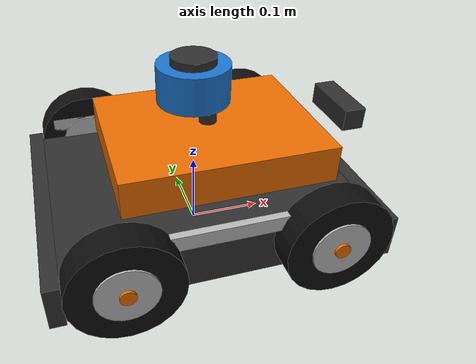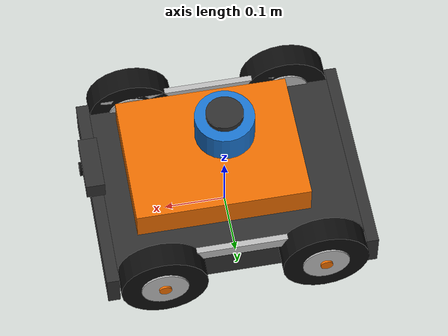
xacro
<?xml version="1.0"?>
<robot name="farm_robot" xmlns:xacro="http://www.ros.org/wiki/xacro">

  <!-- Robot dimensions (physics unchanged) -->
  <xacro:property name="body_length"  value="0.40"/>
  <xacro:property name="body_width"   value="0.30"/>
  <xacro:property name="body_height"  value="0.10"/>
  <xacro:property name="wheel_radius" value="0.07"/>
  <xacro:property name="wheel_width"  value="0.04"/>

  <!-- ═══════════════════════════════════════════
       MAIN CHASSIS  (base_link)
       ═══════════════════════════════════════════ -->
  <link name="base_link">

    <!-- Lower hull plate  dark gray -->
    <visual>
      <origin xyz="0 0 0.05" rpy="0 0 0"/>
      <geometry><box size="0.40 0.30 0.06"/></geometry>
      <material name="dark_gray"><color rgba="0.18 0.18 0.18 1.0"/></material>
    </visual>

    <!-- Upper body / payload deck  orange -->
    <visual>
      <origin xyz="0.02 0 0.135" rpy="0 0 0"/>
      <geometry><box size="0.28 0.22 0.05"/></geometry>
      <material name="orange"><color rgba="0.91 0.42 0.00 1.0"/></material>
    </visual>

    <!-- Front bumper bar -->
    <visual>
      <origin xyz="0.21 0 0.05" rpy="0 0 0"/>
      <geometry><box size="0.02 0.34 0.06"/></geometry>
      <material name="bumper_gray"><color rgba="0.18 0.18 0.18 1.0"/></material>
    </visual>

    <!-- Rear bumper bar -->
    <visual>
      <origin xyz="-0.21 0 0.05" rpy="0 0 0"/>
      <geometry><box size="0.02 0.34 0.06"/></geometry>
      <material name="bumper_gray2"><color rgba="0.18 0.18 0.18 1.0"/></material>
    </visual>

    <!-- Left side rail  silver -->
    <visual>
      <origin xyz="0 0.155 0.10" rpy="0 0 0"/>
      <geometry><box size="0.36 0.01 0.02"/></geometry>
      <material name="silver_l"><color rgba="0.72 0.72 0.72 1.0"/></material>
    </visual>

    <!-- Right side rail  silver -->
    <visual>
      <origin xyz="0 -0.155 0.10" rpy="0 0 0"/>
      <geometry><box size="0.36 0.01 0.02"/></geometry>
      <material name="silver_r"><color rgba="0.72 0.72 0.72 1.0"/></material>
    </visual>

    <!-- Collision (unchanged) -->
    <collision>
      <origin xyz="0 0 0.12" rpy="0 0 0"/>
      <geometry><box size="${body_length} ${body_width} ${body_height}"/></geometry>
    </collision>

    <!-- Inertial (unchanged) -->
    <inertial>
      <origin xyz="0 0 0.12" rpy="0 0 0"/>
      <mass value="8.0"/>
      <inertia ixx="0.08" ixy="0" ixz="0"
               iyy="0.12" iyz="0" izz="0.15"/>
    </inertial>
  </link>

  <!-- ═══════════════════════════════════════════
       WHEELS  (positions/physics unchanged)
       ═══════════════════════════════════════════ -->
  <xacro:macro name="wheel" params="name x y">
    <link name="${name}">

      <!-- Tyre  black -->
      <visual>
        <origin xyz="0 0 0" rpy="1.5707963 0 0"/>
        <geometry><cylinder radius="${wheel_radius}" length="0.040"/></geometry>
        <material name="${name}_tyre"><color rgba="0.05 0.05 0.05 1.0"/></material>
      </visual>

      <!-- Hub disc  silver -->
      <visual>
        <origin xyz="0 0 0" rpy="1.5707963 0 0"/>
        <geometry><cylinder radius="0.038" length="0.045"/></geometry>
        <material name="${name}_hub"><color rgba="0.72 0.72 0.72 1.0"/></material>
      </visual>

      <!-- Hub centre bolt  orange -->
      <visual>
        <origin xyz="0 0 0" rpy="1.5707963 0 0"/>
        <geometry><cylinder radius="0.010" length="0.052"/></geometry>
        <material name="${name}_bolt"><color rgba="0.91 0.42 0.00 1.0"/></material>
      </visual>

      <!-- Collision (unchanged) -->
      <collision>
        <origin xyz="0 0 0" rpy="1.5707963 0 0"/>
        <geometry><cylinder radius="${wheel_radius}" length="${wheel_width}"/></geometry>
      </collision>

      <!-- Inertial (unchanged) -->
      <inertial>
        <mass value="0.5"/>
        <inertia ixx="0.002" ixy="0" ixz="0"
                 iyy="0.002" iyz="0" izz="0.002"/>
      </inertial>
    </link>

    <joint name="${name}_joint" type="continuous">
      <parent link="base_link"/>
      <child link="${name}"/>
      <origin xyz="${x} ${y} ${wheel_radius}" rpy="0 0 0"/>
      <axis xyz="0 1 0"/>
    </joint>
  </xacro:macro>

  <!-- Four wheels (positions unchanged) -->
  <xacro:wheel name="front_left_wheel"  x="0.13"  y="0.17"/>
  <xacro:wheel name="front_right_wheel" x="0.13"  y="-0.17"/>
  <xacro:wheel name="rear_left_wheel"   x="-0.13" y="0.17"/>
  <xacro:wheel name="rear_right_wheel"  x="-0.13" y="-0.17"/>

  <!-- ═══════════════════════════════════════════
       GAZEBO DIFF-DRIVE PLUGIN  (unchanged)
       ═══════════════════════════════════════════ -->
  <gazebo>
    <plugin filename="gz-sim-diff-drive-system"
            name="gz::sim::systems::DiffDrive">
      <left_joint>front_left_wheel_joint</left_joint>
      <left_joint>rear_left_wheel_joint</left_joint>
      <right_joint>front_right_wheel_joint</right_joint>
      <right_joint>rear_right_wheel_joint</right_joint>
      <wheel_separation>0.34</wheel_separation>
      <wheel_radius>0.07</wheel_radius>
      <topic>/cmd_vel</topic>
      <odom_topic>/odom</odom_topic>
      <frame_id>odom</frame_id>
      <child_frame_id>base_link</child_frame_id>
      <odom_publish_frequency>30</odom_publish_frequency>
    </plugin>
  </gazebo>

  <!-- ═══════════════════════════════════════════
       FRONT CAMERA MOUNT  (visual only)
       ═══════════════════════════════════════════ -->
  <link name="camera_link">
    <!-- Camera body -->
    <visual>
      <geometry><box size="0.030 0.090 0.030"/></geometry>
      <material name="cam_body"><color rgba="0.18 0.18 0.18 1.0"/></material>
    </visual>
    <!-- Lens ring -->
    <visual>
      <origin xyz="0.016 0 0" rpy="0 1.5707963 0"/>
      <geometry><cylinder radius="0.011" length="0.008"/></geometry>
      <material name="cam_lens"><color rgba="0.05 0.05 0.05 1.0"/></material>
    </visual>
    <collision><geometry><box size="0.030 0.090 0.030"/></geometry></collision>
    <inertial>
      <mass value="0.05"/>
      <inertia ixx="0.00001" ixy="0" ixz="0"
               iyy="0.00001" iyz="0" izz="0.00001"/>
    </inertial>
  </link>
  <joint name="camera_joint" type="fixed">
    <parent link="base_link"/>
    <child link="camera_link"/>
    <origin xyz="0.215 0 0.155" rpy="0 0 0"/>
  </joint>

  <!-- ═══════════════════════════════════════════
       LIDAR MOUNT POLE  (visual only)
       ═══════════════════════════════════════════ -->
  <link name="lidar_pole_link">
    <visual>
      <geometry><cylinder radius="0.012" length="0.08"/></geometry>
      <material name="pole_gray"><color rgba="0.18 0.18 0.18 1.0"/></material>
    </visual>
    <collision><geometry><cylinder radius="0.012" length="0.08"/></geometry></collision>
    <inertial>
      <mass value="0.03"/>
      <inertia ixx="0.00001" ixy="0" ixz="0"
               iyy="0.00001" iyz="0" izz="0.00001"/>
    </inertial>
  </link>
  <joint name="lidar_pole_joint" type="fixed">
    <parent link="base_link"/>
    <child link="lidar_pole_link"/>
    <origin xyz="0.02 0 0.18" rpy="0 0 0"/>
  </joint>

  <!-- ═══════════════════════════════════════════
       LIDAR SENSOR  (position unchanged: 0 0 0.22)
       ═══════════════════════════════════════════ -->
  <link name="lidar_link">
    <!-- Sensor body  blue -->
    <visual>
      <geometry><cylinder radius="0.048" length="0.050"/></geometry>
      <material name="lidar_blue"><color rgba="0.10 0.45 0.80 1.0"/></material>
    </visual>
    <!-- Top cap  dark gray -->
    <visual>
      <origin xyz="0 0 0.030" rpy="0 0 0"/>
      <geometry><cylinder radius="0.030" length="0.010"/></geometry>
      <material name="lidar_cap"><color rgba="0.18 0.18 0.18 1.0"/></material>
    </visual>

    <collision>
      <geometry><cylinder radius="0.04" length="0.04"/></geometry>
    </collision>
    <inertial>
      <mass value="0.1"/>
      <inertia ixx="0.0001" ixy="0" ixz="0"
               iyy="0.0001" iyz="0" izz="0.0001"/>
    </inertial>
  </link>

  <joint name="lidar_joint" type="fixed">
    <parent link="base_link"/>
    <child link="lidar_link"/>
    <origin xyz="0 0 0.22" rpy="0 0 0"/>
  </joint>

  <!-- Gazebo LiDAR sensor (unchanged) -->
  <gazebo reference="lidar_link">
    <sensor name="farm_lidar" type="gpu_lidar">
      <topic>/scan</topic>
      <update_rate>10</update_rate>
      <lidar>
        <scan>
          <horizontal>
            <samples>360</samples>
            <resolution>1</resolution>
            <min_angle>-3.14159</min_angle>
            <max_angle>3.14159</max_angle>
          </horizontal>
        </scan>
        <range>
          <min>0.12</min>
          <max>10.0</max>
          <resolution>0.01</resolution>
        </range>
      </lidar>
      <always_on>true</always_on>
      <visualize>true</visualize>
    </sensor>
  </gazebo>

</robot>
